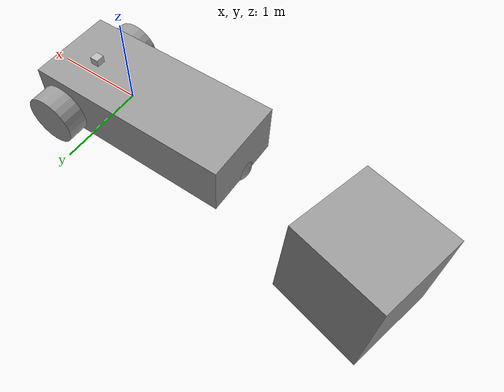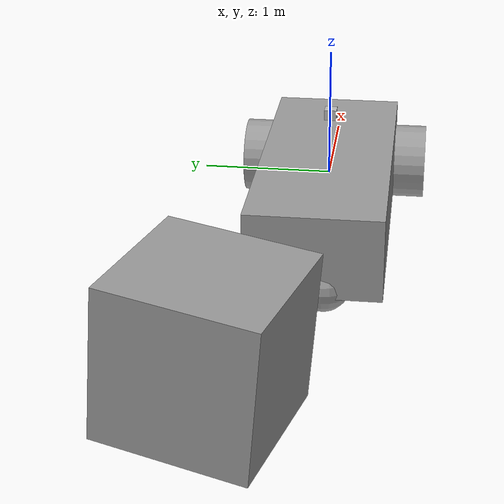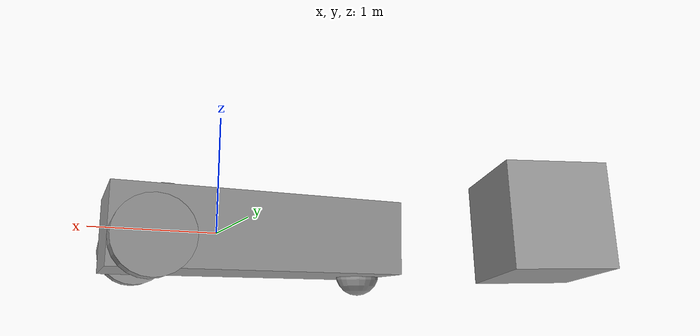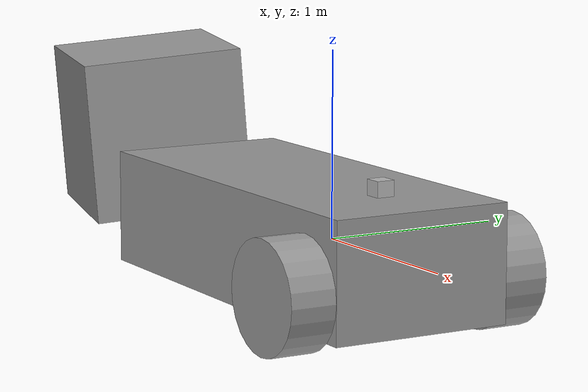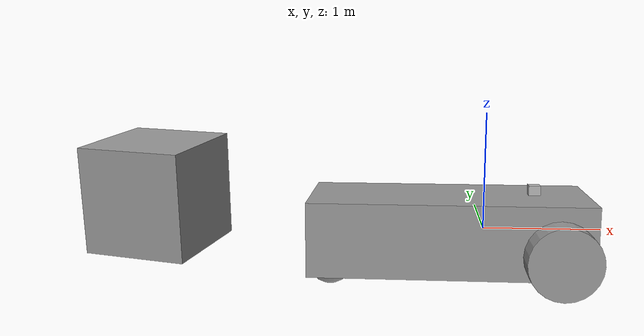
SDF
<?xml version='1.0'?>
<sdf version='1.7'>
  <model name='Model1'>
    <link name='link_1'>
      <inertial>
        <mass>1.49614</mass>
        <inertia>
          <ixx>0.17411</ixx>
          <ixy>0</ixy>
          <ixz>0</ixz>
          <iyy>0.753356</iyy>
          <iyz>0</iyz>
          <izz>0.828603</izz>
        </inertia>
        <pose>0 0 0 0 -0 0</pose>
      </inertial>
      <pose>-0.303859 -0.007162 -0.020011 0 -0 0</pose>
      <gravity>1</gravity>
      <self_collide>0</self_collide>
      <kinematic>0</kinematic>
      <enable_wind>0</enable_wind>
      <visual name='visual'>
        <pose>0 0 0 0 -0 0</pose>
        <geometry>
          <box>
            <size>2.37612 1 0.629659</size>
          </box>
        </geometry>
        <material>
          <lighting>1</lighting>
          <script>
            <uri>file://media/materials/scripts/gazebo.material</uri>
            <name>Gazebo/Grey</name>
          </script>
          <shader type='pixel'>
            <normal_map>__default__</normal_map>
          </shader>
          <ambient>0.3 0.3 0.3 1</ambient>
          <diffuse>0.7 0.7 0.7 1</diffuse>
          <specular>0.01 0.01 0.01 1</specular>
          <emissive>0 0 0 1</emissive>
        </material>
        <transparency>0</transparency>
        <cast_shadows>1</cast_shadows>
      </visual>
      <collision name='collision'>
        <laser_retro>0</laser_retro>
        <max_contacts>10</max_contacts>
        <pose>0 0 0 0 -0 0</pose>
        <geometry>
          <box>
            <size>2.37612 1 0.629659</size>
          </box>
        </geometry>
        <surface>
          <friction>
            <ode>
              <mu>1</mu>
              <mu2>1</mu2>
              <fdir1>0 0 0</fdir1>
              <slip1>0</slip1>
              <slip2>0</slip2>
            </ode>
            <torsional>
              <coefficient>1</coefficient>
              <patch_radius>0</patch_radius>
              <surface_radius>0</surface_radius>
              <use_patch_radius>1</use_patch_radius>
              <ode>
                <slip>0</slip>
              </ode>
            </torsional>
          </friction>
          <bounce>
            <restitution_coefficient>0</restitution_coefficient>
            <threshold>1e+06</threshold>
          </bounce>
          <contact>
            <collide_without_contact>0</collide_without_contact>
            <collide_without_contact_bitmask>1</collide_without_contact_bitmask>
            <collide_bitmask>1</collide_bitmask>
            <ode>
              <soft_cfm>0</soft_cfm>
              <soft_erp>0.2</soft_erp>
              <kp>1e+13</kp>
              <kd>1</kd>
              <max_vel>0.01</max_vel>
              <min_depth>0</min_depth>
            </ode>
            <bullet>
              <split_impulse>1</split_impulse>
              <split_impulse_penetration_threshold>-0.01</split_impulse_penetration_threshold>
              <soft_cfm>0</soft_cfm>
              <soft_erp>0.2</soft_erp>
              <kp>1e+13</kp>
              <kd>1</kd>
            </bullet>
          </contact>
        </surface>
      </collision>
    </link>
    <link name='link_3'>
      <inertial>
        <mass>1</mass>
        <inertia>
          <ixx>0.145833</ixx>
          <ixy>0</ixy>
          <ixz>0</ixz>
          <iyy>0.145833</iyy>
          <iyz>0</iyz>
          <izz>0.125</izz>
        </inertia>
        <pose>0 0 0 1.5707 -0 0</pose>
      </inertial>
      <pose>0.584481 -0.632492 -0.120011 1.5707 -0 0</pose>
      <gravity>1</gravity>
      <self_collide>0</self_collide>
      <kinematic>0</kinematic>
      <enable_wind>0</enable_wind>
      <visual name='visual'>
        <pose>0 0 0 0 -0 0</pose>
        <geometry>
          <cylinder>
            <radius>0.3</radius>
            <length>0.25</length>
          </cylinder>
        </geometry>
        <material>
          <lighting>1</lighting>
          <script>
            <uri>file://media/materials/scripts/gazebo.material</uri>
            <name>Gazebo/Grey</name>
          </script>
          <shader type='pixel'>
            <normal_map>__default__</normal_map>
          </shader>
          <ambient>0.3 0.3 0.3 1</ambient>
          <diffuse>0.7 0.7 0.7 1</diffuse>
          <specular>0.01 0.01 0.01 1</specular>
          <emissive>0 0 0 1</emissive>
        </material>
        <transparency>0</transparency>
        <cast_shadows>1</cast_shadows>
      </visual>
      <collision name='collision'>
        <laser_retro>0</laser_retro>
        <max_contacts>10</max_contacts>
        <pose>0 0 0 0 -0 0</pose>
        <geometry>
          <cylinder>
            <radius>0.3</radius>
            <length>0.25</length>
          </cylinder>
        </geometry>
        <surface>
          <friction>
            <ode>
              <mu>1</mu>
              <mu2>1</mu2>
              <fdir1>0 0 0</fdir1>
              <slip1>0</slip1>
              <slip2>0</slip2>
            </ode>
            <torsional>
              <coefficient>1</coefficient>
              <patch_radius>0</patch_radius>
              <surface_radius>0</surface_radius>
              <use_patch_radius>1</use_patch_radius>
              <ode>
                <slip>0</slip>
              </ode>
            </torsional>
          </friction>
          <bounce>
            <restitution_coefficient>0</restitution_coefficient>
            <threshold>1e+06</threshold>
          </bounce>
          <contact>
            <collide_without_contact>0</collide_without_contact>
            <collide_without_contact_bitmask>1</collide_without_contact_bitmask>
            <collide_bitmask>1</collide_bitmask>
            <ode>
              <soft_cfm>0</soft_cfm>
              <soft_erp>0.2</soft_erp>
              <kp>1e+13</kp>
              <kd>1</kd>
              <max_vel>0.01</max_vel>
              <min_depth>0</min_depth>
            </ode>
            <bullet>
              <split_impulse>1</split_impulse>
              <split_impulse_penetration_threshold>-0.01</split_impulse_penetration_threshold>
              <soft_cfm>0</soft_cfm>
              <soft_erp>0.2</soft_erp>
              <kp>1e+13</kp>
              <kd>1</kd>
            </bullet>
          </contact>
        </surface>
      </collision>
    </link>
    <link name='link_3_clone'>
      <inertial>
        <mass>1</mass>
        <inertia>
          <ixx>0.145833</ixx>
          <ixy>0</ixy>
          <ixz>0</ixz>
          <iyy>0.145833</iyy>
          <iyz>0</iyz>
          <izz>0.125</izz>
        </inertia>
        <pose>0 0 0.3 1.5707 -0 0</pose>
      </inertial>
      <pose>0.584481 0.617567 -0.120011 1.5707 -0 0</pose>
      <gravity>1</gravity>
      <self_collide>0</self_collide>
      <kinematic>0</kinematic>
      <enable_wind>0</enable_wind>
      <visual name='visual'>
        <pose>0 0 0 0 -0 0</pose>
        <geometry>
          <cylinder>
            <radius>0.3</radius>
            <length>0.25</length>
          </cylinder>
        </geometry>
        <material>
          <lighting>1</lighting>
          <script>
            <uri>file://media/materials/scripts/gazebo.material</uri>
            <name>Gazebo/Grey</name>
          </script>
          <shader type='pixel'>
            <normal_map>__default__</normal_map>
          </shader>
          <ambient>0.3 0.3 0.3 1</ambient>
          <diffuse>0.7 0.7 0.7 1</diffuse>
          <specular>0.01 0.01 0.01 1</specular>
          <emissive>0 0 0 1</emissive>
        </material>
        <transparency>0</transparency>
        <cast_shadows>1</cast_shadows>
      </visual>
      <collision name='collision'>
        <laser_retro>0</laser_retro>
        <max_contacts>10</max_contacts>
        <pose>0 0 0 0 -0 0</pose>
        <geometry>
          <cylinder>
            <radius>0.3</radius>
            <length>0.25</length>
          </cylinder>
        </geometry>
        <surface>
          <friction>
            <ode>
              <mu>1</mu>
              <mu2>1</mu2>
              <fdir1>0 0 0</fdir1>
              <slip1>0</slip1>
              <slip2>0</slip2>
            </ode>
            <torsional>
              <coefficient>1</coefficient>
              <patch_radius>0</patch_radius>
              <surface_radius>0</surface_radius>
              <use_patch_radius>1</use_patch_radius>
              <ode>
                <slip>0</slip>
              </ode>
            </torsional>
          </friction>
          <bounce>
            <restitution_coefficient>0</restitution_coefficient>
            <threshold>1e+06</threshold>
          </bounce>
          <contact>
            <collide_without_contact>0</collide_without_contact>
            <collide_without_contact_bitmask>1</collide_without_contact_bitmask>
            <collide_bitmask>1</collide_bitmask>
            <ode>
              <soft_cfm>0</soft_cfm>
              <soft_erp>0.2</soft_erp>
              <kp>1e+13</kp>
              <kd>1</kd>
              <max_vel>0.01</max_vel>
              <min_depth>0</min_depth>
            </ode>
            <bullet>
              <split_impulse>1</split_impulse>
              <split_impulse_penetration_threshold>-0.01</split_impulse_penetration_threshold>
              <soft_cfm>0</soft_cfm>
              <soft_erp>0.2</soft_erp>
              <kp>1e+13</kp>
              <kd>1</kd>
            </bullet>
          </contact>
        </surface>
      </collision>
    </link>
    <link name='link_4_clone_clone'>
      <inertial>
        <mass>1</mass>
        <inertia>
          <ixx>0.1</ixx>
          <ixy>0</ixy>
          <ixz>0</ixz>
          <iyy>0.1</iyy>
          <iyz>0</iyz>
          <izz>0.1</izz>
        </inertia>
        <pose>0 0 0.2 0 -0 0</pose>
      </inertial>
      <pose>-1.32736 -0.073081 -0.1 0 -0 0</pose>
      <gravity>1</gravity>
      <self_collide>0</self_collide>
      <kinematic>0</kinematic>
      <enable_wind>0</enable_wind>
      <visual name='visual'>
        <pose>0 0 -0.2 0 -0 0</pose>
        <geometry>
          <sphere>
            <radius>0.2</radius>
          </sphere>
        </geometry>
        <material>
          <lighting>1</lighting>
          <script>
            <uri>file://media/materials/scripts/gazebo.material</uri>
            <name>Gazebo/Grey</name>
          </script>
          <shader type='pixel'>
            <normal_map>__default__</normal_map>
          </shader>
          <ambient>0.3 0.3 0.3 1</ambient>
          <diffuse>0.7 0.7 0.7 1</diffuse>
          <specular>0.01 0.01 0.01 1</specular>
          <emissive>0 0 0 1</emissive>
        </material>
        <transparency>0</transparency>
        <cast_shadows>1</cast_shadows>
      </visual>
      <collision name='collision'>
        <laser_retro>0</laser_retro>
        <max_contacts>10</max_contacts>
        <pose>0 0 -0.2 0 -0 0</pose>
        <geometry>
          <sphere>
            <radius>0.2</radius>
          </sphere>
        </geometry>
        <surface>
          <friction>
            <ode>
              <mu>1</mu>
              <mu2>1</mu2>
              <fdir1>0 0 0</fdir1>
              <slip1>0</slip1>
              <slip2>0</slip2>
            </ode>
            <torsional>
              <coefficient>1</coefficient>
              <patch_radius>0</patch_radius>
              <surface_radius>0</surface_radius>
              <use_patch_radius>1</use_patch_radius>
              <ode>
                <slip>0</slip>
              </ode>
            </torsional>
          </friction>
          <bounce>
            <restitution_coefficient>0</restitution_coefficient>
            <threshold>1e+06</threshold>
          </bounce>
          <contact>
            <collide_without_contact>0</collide_without_contact>
            <collide_without_contact_bitmask>1</collide_without_contact_bitmask>
            <collide_bitmask>1</collide_bitmask>
            <ode>
              <soft_cfm>0</soft_cfm>
              <soft_erp>0.2</soft_erp>
              <kp>1e+13</kp>
              <kd>1</kd>
              <max_vel>0.01</max_vel>
              <min_depth>0</min_depth>
            </ode>
            <bullet>
              <split_impulse>1</split_impulse>
              <split_impulse_penetration_threshold>-0.01</split_impulse_penetration_threshold>
              <soft_cfm>0</soft_cfm>
              <soft_erp>0.2</soft_erp>
              <kp>1e+13</kp>
              <kd>1</kd>
            </bullet>
          </contact>
        </surface>
      </collision>
    </link>
    <link name='link_6'>
      <inertial>
        <mass>1</mass>
        <inertia>
          <ixx>0.166667</ixx>
          <ixy>0</ixy>
          <ixz>0</ixz>
          <iyy>0.166667</iyy>
          <iyz>0</iyz>
          <izz>0.166667</izz>
        </inertia>
        <pose>0 0 0 0 -0 0</pose>
      </inertial>
      <pose>-3.02692 0.463423 0.184917 0.082548 0.020022 -0.23742</pose>
      <self_collide>0</self_collide>
      <enable_wind>0</enable_wind>
      <kinematic>0</kinematic>
      <visual name='visual'>
        <pose>0 0 0 0 -0 0</pose>
        <geometry>
          <box>
            <size>1 1 1</size>
          </box>
        </geometry>
        <material>
          <lighting>1</lighting>
          <script>
            <uri>file://media/materials/scripts/gazebo.material</uri>
            <name>Gazebo/Grey</name>
          </script>
          <shader type='pixel'/>
          <emissive>0 0 0 1</emissive>
        </material>
        <transparency>0</transparency>
        <cast_shadows>1</cast_shadows>
      </visual>
      <collision name='collision'>
        <laser_retro>0</laser_retro>
        <max_contacts>10</max_contacts>
        <pose>0 0 0 0 -0 0</pose>
        <geometry>
          <box>
            <size>1 1 1</size>
          </box>
        </geometry>
        <surface>
          <friction>
            <ode>
              <mu>1</mu>
              <mu2>1</mu2>
              <fdir1>0 0 0</fdir1>
              <slip1>0</slip1>
              <slip2>0</slip2>
            </ode>
            <torsional>
              <coefficient>1</coefficient>
              <patch_radius>0</patch_radius>
              <surface_radius>0</surface_radius>
              <use_patch_radius>1</use_patch_radius>
              <ode>
                <slip>0</slip>
              </ode>
            </torsional>
          </friction>
          <bounce>
            <restitution_coefficient>0</restitution_coefficient>
            <threshold>1e+06</threshold>
          </bounce>
          <contact>
            <collide_without_contact>0</collide_without_contact>
            <collide_without_contact_bitmask>1</collide_without_contact_bitmask>
            <collide_bitmask>1</collide_bitmask>
            <ode>
              <soft_cfm>0</soft_cfm>
              <soft_erp>0.2</soft_erp>
              <kp>1e+13</kp>
              <kd>1</kd>
              <max_vel>0.01</max_vel>
              <min_depth>0</min_depth>
            </ode>
            <bullet>
              <split_impulse>1</split_impulse>
              <split_impulse_penetration_threshold>-0.01</split_impulse_penetration_threshold>
              <soft_cfm>0</soft_cfm>
              <soft_erp>0.2</soft_erp>
              <kp>1e+13</kp>
              <kd>1</kd>
            </bullet>
          </contact>
        </surface>
      </collision>
    </link>
    <model name='depth_camera'>
      <link name='link'>
        <pose>0 0 0.05 0 -0 0</pose>
        <inertial>
          <mass>0.1</mass>
          <inertia>
            <ixx>0.000166667</ixx>
            <iyy>0.000166667</iyy>
            <izz>0.000166667</izz>
            <ixy>0</ixy>
            <ixz>0</ixz>
            <iyz>0</iyz>
          </inertia>
          <pose>0 0 0 0 -0 0</pose>
        </inertial>
        <collision name='collision'>
          <geometry>
            <box>
              <size>0.1 0.1 0.1</size>
            </box>
          </geometry>
          <max_contacts>10</max_contacts>
          <surface>
            <contact>
              <ode/>
            </contact>
            <bounce/>
            <friction>
              <torsional>
                <ode/>
              </torsional>
              <ode/>
            </friction>
          </surface>
        </collision>
        <visual name='visual'>
          <geometry>
            <box>
              <size>0.1 0.1 0.1</size>
            </box>
          </geometry>
        </visual>
        <sensor name='camera' type='depth'>
          <camera>
            <horizontal_fov>1.047</horizontal_fov>
            <image>
              <width>320</width>
              <height>240</height>
            </image>
            <clip>
              <near>0.1</near>
              <far>100</far>
            </clip>
          </camera>
          <always_on>1</always_on>
          <update_rate>30</update_rate>
          <visualize>1</visualize>
        </sensor>
        <self_collide>0</self_collide>
        <enable_wind>0</enable_wind>
        <kinematic>0</kinematic>
      </link>
      <pose>0.426534 0.029544 0.280044 0 -0 0</pose>
    </model>
    <joint name='link_1_JOINT_0_0' type='ball'>
      <parent>link_1</parent>
      <child>link_4_clone_clone</child>
      <pose>0 0 -0.2 0 -0 0</pose>
      <physics>
        <ode>
          <limit>
            <cfm>0</cfm>
            <erp>0.2</erp>
          </limit>
          <suspension>
            <cfm>0</cfm>
            <erp>0.2</erp>
          </suspension>
        </ode>
      </physics>
    </joint>
    <joint name='link_1_JOINT_0' type='revolute'>
      <parent>link_1</parent>
      <child>link_3</child>
      <pose>0 0 0 0 -0 0</pose>
      <axis>
        <xyz>0 0 1</xyz>
        <limit>
          <lower>-1.79769e+308</lower>
          <upper>1.79769e+308</upper>
          <effort>-1</effort>
          <velocity>-1</velocity>
        </limit>
        <dynamics>
          <spring_reference>0</spring_reference>
          <spring_stiffness>0</spring_stiffness>
          <damping>0</damping>
          <friction>0</friction>
        </dynamics>
      </axis>
      <physics>
        <ode>
          <limit>
            <cfm>0</cfm>
            <erp>0.2</erp>
          </limit>
          <suspension>
            <cfm>0</cfm>
            <erp>0.2</erp>
          </suspension>
        </ode>
      </physics>
    </joint>
    <joint name='link_1_JOINT_4' type='revolute'>
      <parent>link_1</parent>
      <child>link_3_clone</child>
      <pose>0 0 0.2 0 -0 0</pose>
      <axis>
        <xyz>1 0 0</xyz>
        <limit>
          <lower>-1.79769e+308</lower>
          <upper>1.79769e+308</upper>
          <effort>-1</effort>
          <velocity>-1</velocity>
        </limit>
        <dynamics>
          <spring_reference>0</spring_reference>
          <spring_stiffness>0</spring_stiffness>
          <damping>0</damping>
          <friction>0</friction>
        </dynamics>
      </axis>
      <physics>
        <ode>
          <limit>
            <cfm>0</cfm>
            <erp>0.2</erp>
          </limit>
          <suspension>
            <cfm>0</cfm>
            <erp>0.2</erp>
          </suspension>
        </ode>
      </physics>
    </joint>
    <joint name='link_1_JOINT_7' type='fixed'>
      <parent>link_1</parent>
      <child>depth_camera::link</child>
      <pose>0 0 0 0 -0 0</pose>
      <physics>
        <ode>
          <limit>
            <cfm>0</cfm>
            <erp>0.2</erp>
          </limit>
          <suspension>
            <cfm>0</cfm>
            <erp>0.2</erp>
          </suspension>
        </ode>
      </physics>
    </joint>
    <static>0</static>
    <allow_auto_disable>1</allow_auto_disable>
    <plugin name='follower' filename='libFollowerPlugin.so'/>
  </model>
</sdf>
